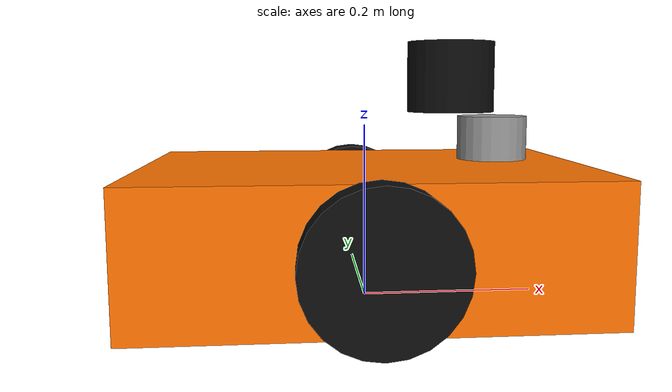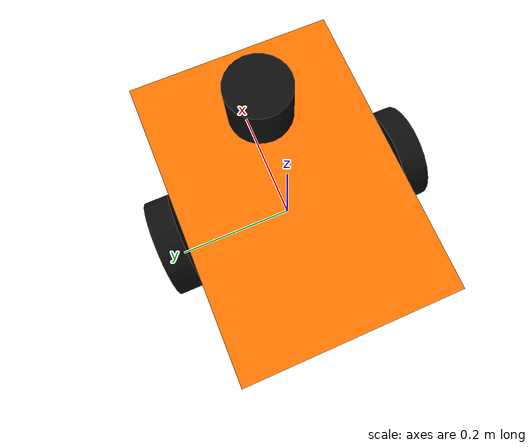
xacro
<?xml version="1.0"?>
<robot name="ugv" xmlns:xacro="http://www.ros.org/wiki/xacro">

  <!-- ===================== PARAMETERS ===================== -->
  <xacro:property name="base_length" value="0.50"/>
  <xacro:property name="base_width"  value="0.35"/>
  <xacro:property name="base_height" value="0.15"/>
  <xacro:property name="wheel_radius" value="0.08"/>
  <xacro:property name="wheel_width"  value="0.04"/>
  <xacro:property name="wheel_separation" value="0.40"/>
  <xacro:property name="wheel_offset_x" value="0.0"/>
  <xacro:property name="base_mass" value="8.0"/>
  <xacro:property name="wheel_mass" value="0.8"/>

  <material name="grey"><color rgba="0.6 0.6 0.6 1.0"/></material>
  <material name="black"><color rgba="0.05 0.05 0.05 1.0"/></material>
  <material name="orange"><color rgba="1.0 0.45 0.0 1.0"/></material>

  <!-- ===================== BASE ===================== -->
  <link name="base_footprint"/>

  <joint name="base_joint" type="fixed">
    <parent link="base_footprint"/>
    <child link="base_link"/>
    <origin xyz="0 0 ${wheel_radius}" rpy="0 0 0"/>
  </joint>

  <link name="base_link">
    <visual>
      <geometry><box size="${base_length} ${base_width} ${base_height}"/></geometry>
      <material name="orange"/>
    </visual>
    <collision>
      <geometry><box size="${base_length} ${base_width} ${base_height}"/></geometry>
    </collision>
    <inertial>
      <mass value="${base_mass}"/>
      <inertia ixx="0.15" ixy="0" ixz="0" iyy="0.20" iyz="0" izz="0.25"/>
    </inertial>
  </link>

  <!-- ===================== WHEEL MACRO ===================== -->
  <xacro:macro name="wheel" params="prefix reflect">
    <link name="${prefix}_wheel_link">
      <visual>
        <origin xyz="0 0 0" rpy="1.5708 0 0"/>
        <geometry><cylinder radius="${wheel_radius}" length="${wheel_width}"/></geometry>
        <material name="black"/>
      </visual>
      <collision>
        <origin xyz="0 0 0" rpy="1.5708 0 0"/>
        <geometry><cylinder radius="${wheel_radius}" length="${wheel_width}"/></geometry>
      </collision>
      <inertial>
        <mass value="${wheel_mass}"/>
        <inertia ixx="0.001" ixy="0" ixz="0" iyy="0.001" iyz="0" izz="0.001"/>
      </inertial>
    </link>

    <joint name="${prefix}_wheel_joint" type="continuous">
      <parent link="base_link"/>
      <child link="${prefix}_wheel_link"/>
      <origin xyz="${wheel_offset_x} ${reflect*wheel_separation/2} 0" rpy="0 0 0"/>
      <axis xyz="0 1 0"/>
    </joint>
  </xacro:macro>

  <xacro:wheel prefix="left"  reflect="1"/>
  <xacro:wheel prefix="right" reflect="-1"/>

  <!-- Caster (passive support wheel, non-driven) -->
  <link name="caster_wheel_link">
    <visual>
      <geometry><sphere radius="0.05"/></geometry>
      <material name="black"/>
    </visual>
    <collision>
      <geometry><sphere radius="0.05"/></geometry>
    </collision>
    <inertial>
      <mass value="0.3"/>
      <inertia ixx="0.0001" ixy="0" ixz="0" iyy="0.0001" iyz="0" izz="0.0001"/>
    </inertial>
  </link>
  <joint name="caster_wheel_joint" type="fixed">
    <parent link="base_link"/>
    <child link="caster_wheel_link"/>
    <origin xyz="-0.20 0 -0.03" rpy="0 0 0"/>
  </joint>

  <!-- ===================== LIDAR ===================== -->
  <link name="lidar_link">
    <visual>
      <geometry><cylinder radius="0.04" length="0.05"/></geometry>
      <material name="grey"/>
    </visual>
    <collision>
      <geometry><cylinder radius="0.04" length="0.05"/></geometry>
    </collision>
    <inertial>
      <mass value="0.2"/>
      <inertia ixx="0.0001" ixy="0" ixz="0" iyy="0.0001" iyz="0" izz="0.0001"/>
    </inertial>
  </link>
  <joint name="lidar_joint" type="fixed">
    <parent link="base_link"/>
    <child link="lidar_link"/>
    <origin xyz="0.15 0 ${base_height/2 + 0.03}" rpy="0 0 0"/>
  </joint>

    <!-- ===================== 3D LIDAR ===================== -->
  <link name="lidar_3d_link">
    <visual>
      <geometry><cylinder radius="0.05" length="0.08"/></geometry>
      <material name="black"/>
    </visual>
    <collision>
      <geometry><cylinder radius="0.05" length="0.08"/></geometry>
    </collision>
    <inertial>
      <mass value="0.3"/>
      <inertia ixx="0.0002" ixy="0" ixz="0" iyy="0.0002" iyz="0" izz="0.0002"/>
    </inertial>
  </link>
  <joint name="lidar_3d_joint" type="fixed">
    <parent link="base_link"/>
    <child link="lidar_3d_link"/>
    <origin xyz="0.10 0 ${base_height/2 + 0.10}" rpy="0 0 0"/>
  </joint>

  <!-- ===================== IMU ===================== -->
  <link name="imu_link">
    <visual><geometry><box size="0.02 0.02 0.01"/></geometry></visual>
  </link>
  <joint name="imu_joint" type="fixed">
    <parent link="base_link"/>
    <child link="imu_link"/>
    <origin xyz="0 0 0.02" rpy="0 0 0"/>
  </joint>

  <!-- ===================== GAZEBO PLUGINS ===================== -->
  <xacro:include filename="$(find ugv_description)/urdf/ugv.gazebo.xacro"/>

</robot>
